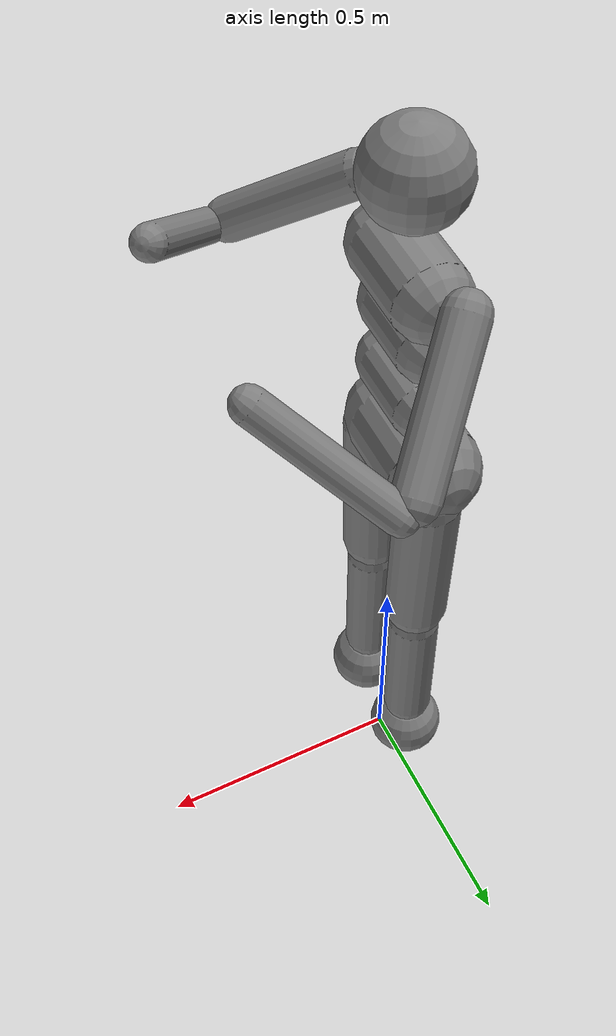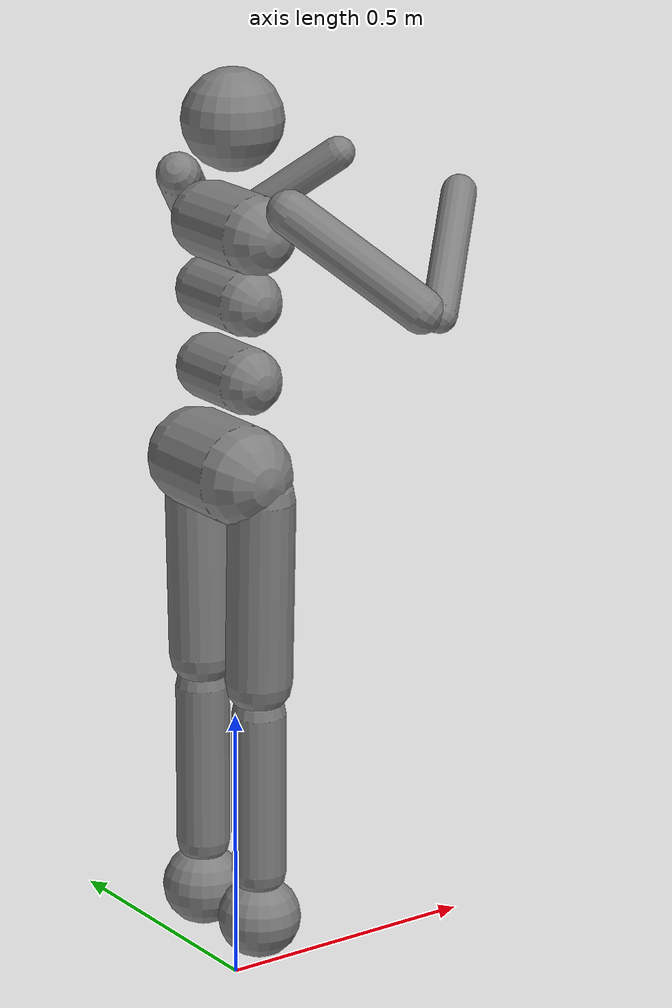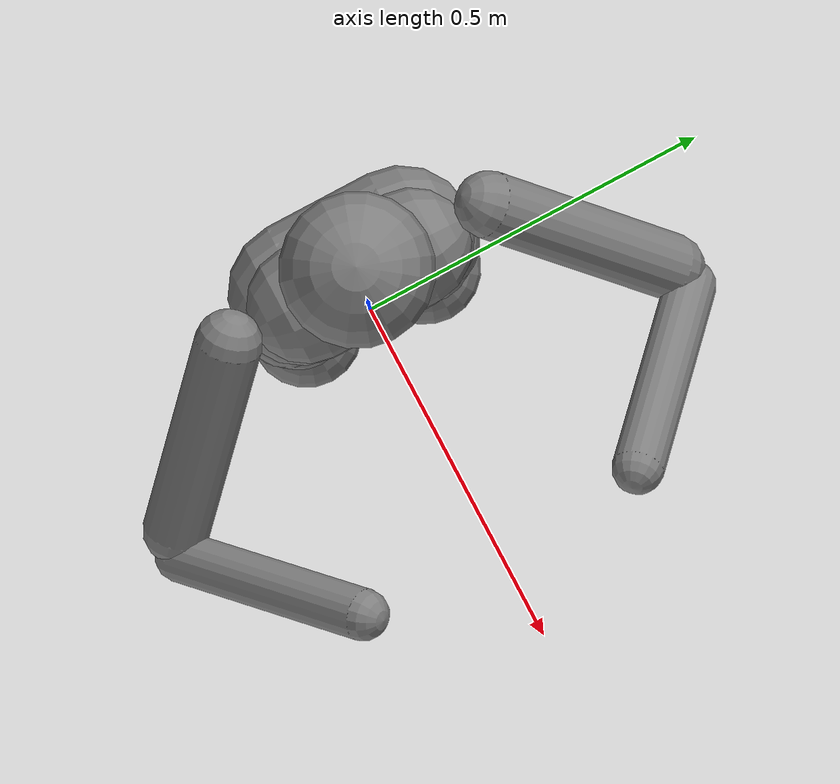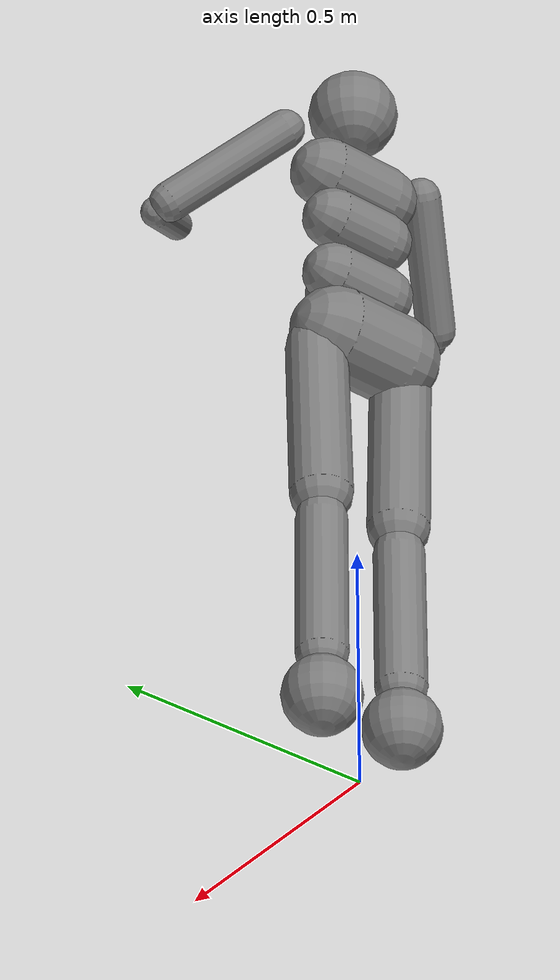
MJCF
<mujoco model="humanoid">
    <compiler angle="degree"/>
    <option gravity="0 0 -9.81" timestep="0.005"/>

    <default>
        <joint limited="true" damping="1" armature="0.02"/>
        <geom type="capsule" density="1000" friction="0.8 0.1 0.1"/>
        <motor ctrlrange="-1 1" gear="100"/>
        <default class="arm">
            <geom size="0.04"/>
            <motor gear="25"/>
        </default>
        <default class="leg">
            <geom size="0.06"/>
            <motor gear="120"/>
        </default>
    </default>

    <worldbody>
        <body name="torso" pos="0 0 1.4">
            <freejoint name="root"/>
            <geom name="torso_geom" fromto="0 -0.07 0  0 0.07 0" size="0.07"/>
            <geom name="head_geom" type="sphere" size="0.09" pos="0 0 0.19"/>
            <geom name="uwaist_geom" fromto="-0.01 -0.06 -0.12  -0.01 0.06 -0.12" size="0.06"/>

            <body name="lwaist" pos="-0.01 0 -0.26">
                <joint name="abdomen_z" type="hinge" axis="0 0 1" range="-45 45"/>
                <joint name="abdomen_y" type="hinge" axis="0 1 0" range="-75 30"/>
                <geom name="lwaist_geom" fromto="0 -0.06 0  0 0.06 0" size="0.06"/>

                <body name="pelvis" pos="0 0 -0.165">
                    <joint name="abdomen_x" type="hinge" axis="1 0 0" range="-35 35"/>
                    <geom name="pelvis_geom" fromto="-0.02 -0.07 0  -0.02 0.07 0" size="0.09"/>

                    <body name="right_thigh" pos="0 -0.1 -0.04" childclass="leg">
                        <joint name="right_hip_x" type="hinge" axis="1 0 0" range="-25 5"/>
                        <joint name="right_hip_y" type="hinge" axis="0 1 0" range="-110 20"/>
                        <geom name="right_thigh_geom" fromto="0 0 0  0 0.01 -0.34"/>
                        <body name="right_shin" pos="0 0.01 -0.4">
                            <joint name="right_knee" type="hinge" axis="0 -1 0" range="-160 0"/>
                            <geom name="right_shin_geom" fromto="0 0 0  0 0 -0.3" size="0.049"/>
                            <body name="right_foot" pos="0 0 -0.39">
                                <joint name="right_ankle" type="hinge" axis="0 1 0" range="-50 50"/>
                                <geom name="right_foot_geom" type="sphere" size="0.075"/>
                            </body>
                        </body>
                    </body>

                    <body name="left_thigh" pos="0 0.1 -0.04" childclass="leg">
                        <joint name="left_hip_x" type="hinge" axis="-1 0 0" range="-25 5"/>
                        <joint name="left_hip_y" type="hinge" axis="0 1 0" range="-110 20"/>
                        <geom name="left_thigh_geom" fromto="0 0 0  0 -0.01 -0.34"/>
                        <body name="left_shin" pos="0 -0.01 -0.4">
                            <joint name="left_knee" type="hinge" axis="0 -1 0" range="-160 0"/>
                            <geom name="left_shin_geom" fromto="0 0 0  0 0 -0.3" size="0.049"/>
                            <body name="left_foot" pos="0 0 -0.39">
                                <joint name="left_ankle" type="hinge" axis="0 1 0" range="-50 50"/>
                                <geom name="left_foot_geom" type="sphere" size="0.075"/>
                            </body>
                        </body>
                    </body>
                </body>
            </body>

            <body name="right_upper_arm" pos="0 -0.17 0.06" childclass="arm">
                <joint name="right_shoulder_x" type="hinge" axis="1 0 0" range="-85 60"/>
                <joint name="right_shoulder_y" type="hinge" axis="0 1 0" range="-85 60"/>
                <geom name="right_uarm_geom" fromto="0 0 0  0.16 -0.16 -0.16"/>
                <body name="right_lower_arm" pos="0.18 -0.18 -0.18">
                    <joint name="right_elbow" type="hinge" axis="0 -1 1" range="-90 50"/>
                    <geom name="right_larm_geom" fromto="0.01 0.01 0.01  0.17 0.17 0.17" size="0.031"/>
                </body>
            </body>

            <body name="left_upper_arm" pos="0 0.17 0.06" childclass="arm">
                <joint name="left_shoulder_x" type="hinge" axis="1 0 0" range="-60 85"/>
                <joint name="left_shoulder_y" type="hinge" axis="0 1 0" range="-60 85"/>
                <geom name="left_uarm_geom" fromto="0 0 0  0.16 0.16 -0.16"/>
                <body name="left_lower_arm" pos="0.18 0.18 -0.18">
                    <joint name="left_elbow" type="hinge" axis="0 -1 -1" range="-90 50"/>
                    <geom name="left_larm_geom" fromto="0.01 -0.01 0.01  0.17 -0.17 0.17" size="0.031"/>
                </body>
            </body>
        </body>
    </worldbody>

    <actuator>
        <motor name="abdomen_z_motor" joint="abdomen_z" gear="80"/>
        <motor name="abdomen_y_motor" joint="abdomen_y" gear="80"/>
        <motor name="abdomen_x_motor" joint="abdomen_x" gear="80"/>

        <motor name="right_hip_x_motor" joint="right_hip_x" gear="60"/>
        <motor name="right_hip_y_motor" joint="right_hip_y" gear="120"/>
        <motor name="right_knee_motor"  joint="right_knee"  gear="80"/>
        <motor name="right_ankle_motor" joint="right_ankle" gear="40"/>

        <motor name="left_hip_x_motor" joint="left_hip_x" gear="60"/>
        <motor name="left_hip_y_motor" joint="left_hip_y" gear="120"/>
        <motor name="left_knee_motor"  joint="left_knee"  gear="80"/>
        <motor name="left_ankle_motor" joint="left_ankle" gear="40"/>

        <motor name="right_shoulder_x_motor" joint="right_shoulder_x" gear="25"/>
        <motor name="right_shoulder_y_motor" joint="right_shoulder_y" gear="25"/>
        <motor name="right_elbow_motor"      joint="right_elbow"      gear="25"/>

        <motor name="left_shoulder_x_motor" joint="left_shoulder_x" gear="25"/>
        <motor name="left_shoulder_y_motor" joint="left_shoulder_y" gear="25"/>
        <motor name="left_elbow_motor"      joint="left_elbow"      gear="25"/>
    </actuator>
</mujoco>
